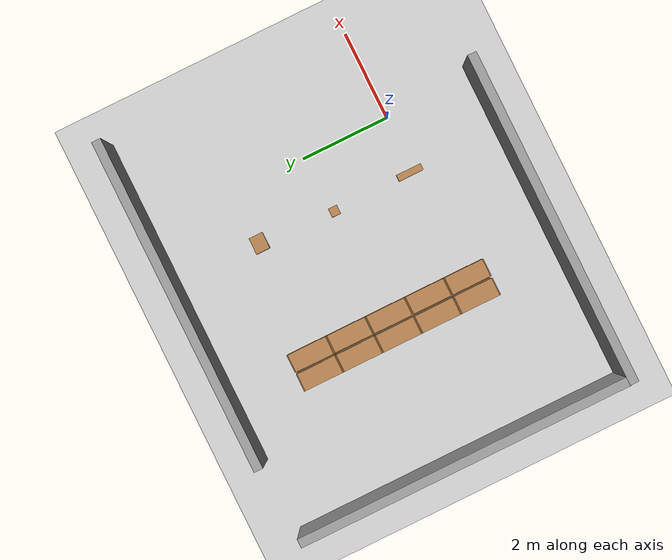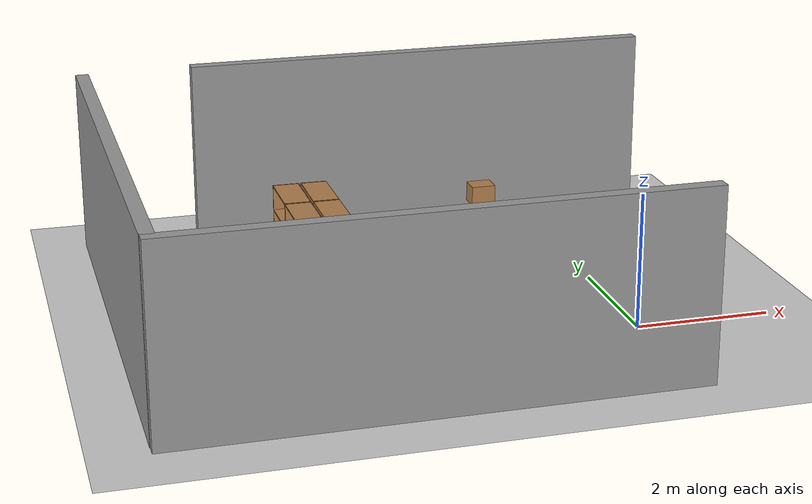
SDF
<sdf version="1.4">
 <world name="default">
  <model name="ground_plane">
   <static>1</static>
   <link name="link">
    <collision name="collision">
     <geometry><plane><normal>0 0 1</normal><size>100 100</size></plane></geometry>
     <surface><friction><ode><mu>100</mu><mu2>50</mu2></ode></friction></surface>
    </collision>
    <visual name="visual">
     <cast_shadows>0</cast_shadows>
     <geometry><plane><normal>0 0 1</normal><size>100 100</size></plane></geometry>
     <material>
      <script><uri>file://media/materials/scripts/gazebo.material</uri><name>Gazebo/Grey</name></script>
     </material>
    </visual>
    <velocity_decay><linear>0</linear><angular>0</angular></velocity_decay>
   </link>
  </model>
  <model name="bookshelf_2">
   <static>1</static>
   <link name="link">
    <inertial><mass>1</mass></inertial>
    <collision name="back">
     <pose>0 0.005 0.6 0 -0 0</pose>
     <geometry><box><size>0.9 0.01 1.2</size></box></geometry>
    </collision>
    <visual name="visual1">
     <pose>0 0.005 0.6 0 -0 0</pose>
     <geometry><box><size>0.9 0.01 1.2</size></box></geometry>
     <material>
      <script><uri>file://media/materials/scripts/gazebo.material</uri><name>Gazebo/Wood</name></script>
     </material>
    </visual>
    <collision name="left_side">
     <pose>0.45 -0.195 0.6 0 -0 0</pose>
     <geometry><box><size>0.02 0.4 1.2</size></box></geometry>
    </collision>
    <visual name="visual2">
     <pose>0.45 -0.195 0.6 0 -0 0</pose>
     <geometry><box><size>0.02 0.4 1.2</size></box></geometry>
     <material>
      <script><uri>file://media/materials/scripts/gazebo.material</uri><name>Gazebo/Wood</name></script>
     </material>
    </visual>
    <collision name="right_side">
     <pose>-0.45 -0.195 0.6 0 -0 0</pose>
     <geometry><box><size>0.02 0.4 1.2</size></box></geometry>
    </collision>
    <visual name="visual3">
     <pose>-0.45 -0.195 0.6 0 -0 0</pose>
     <geometry><box><size>0.02 0.4 1.2</size></box></geometry>
     <material>
      <script><uri>file://media/materials/scripts/gazebo.material</uri><name>Gazebo/Wood</name></script>
     </material>
    </visual>
    <collision name="bottom">
     <pose>0 -0.195 0.03 0 -0 0</pose>
     <geometry><box><size>0.88 0.4 0.06</size></box></geometry>
    </collision>
    <visual name="visual4">
     <pose>0 -0.195 0.03 0 -0 0</pose>
     <geometry><box><size>0.88 0.4 0.06</size></box></geometry>
     <material>
      <script><uri>file://media/materials/scripts/gazebo.material</uri><name>Gazebo/Wood</name></script>
     </material>
    </visual>
    <collision name="top">
     <pose>0 -0.195 1.19 0 -0 0</pose>
     <geometry><box><size>0.88 0.4 0.02</size></box></geometry>
    </collision>
    <visual name="visual5">
     <pose>0 -0.195 1.19 0 -0 0</pose>
     <geometry><box><size>0.88 0.4 0.02</size></box></geometry>
     <material>
      <script><uri>file://media/materials/scripts/gazebo.material</uri><name>Gazebo/Wood</name></script>
     </material>
    </visual>
    <collision name="low_shelf">
     <pose>0 -0.195 0.43 0 -0 0</pose>
     <geometry><box><size>0.88 0.4 0.02</size></box></geometry>
    </collision>
    <visual name="visual6">
     <pose>0 -0.195 0.43 0 -0 0</pose>
     <geometry><box><size>0.88 0.4 0.02</size></box></geometry>
     <material>
      <script><uri>file://media/materials/scripts/gazebo.material</uri><name>Gazebo/Wood</name></script>
     </material>
    </visual>
    <collision name="high_shelf">
     <pose>0 -0.195 0.8 0 -0 0</pose>
     <geometry><box><size>0.88 0.4 0.02</size></box></geometry>
    </collision>
    <visual name="visual7">
     <pose>0 -0.195 0.8 0 -0 0</pose>
     <geometry><box><size>0.88 0.4 0.02</size></box></geometry>
     <material>
      <script><uri>file://media/materials/scripts/gazebo.material</uri><name>Gazebo/Wood</name></script>
     </material>
    </visual>
    <velocity_decay><linear>0</linear><angular>0</angular></velocity_decay>
   </link>
   <pose>-4 1.8376 0 0 -0 1.5708</pose>
  </model>
  <model name="bookshelf_3">
   <static>1</static>
   <link name="link">
    <inertial><mass>1</mass></inertial>
    <collision name="back">
     <pose>0 0.005 0.6 0 -0 0</pose>
     <geometry><box><size>0.9 0.01 1.2</size></box></geometry>
    </collision>
    <visual name="visual1">
     <pose>0 0.005 0.6 0 -0 0</pose>
     <geometry><box><size>0.9 0.01 1.2</size></box></geometry>
     <material>
      <script><uri>file://media/materials/scripts/gazebo.material</uri><name>Gazebo/Wood</name></script>
     </material>
    </visual>
    <collision name="left_side">
     <pose>0.45 -0.195 0.6 0 -0 0</pose>
     <geometry><box><size>0.02 0.4 1.2</size></box></geometry>
    </collision>
    <visual name="visual2">
     <pose>0.45 -0.195 0.6 0 -0 0</pose>
     <geometry><box><size>0.02 0.4 1.2</size></box></geometry>
     <material>
      <script><uri>file://media/materials/scripts/gazebo.material</uri><name>Gazebo/Wood</name></script>
     </material>
    </visual>
    <collision name="right_side">
     <pose>-0.45 -0.195 0.6 0 -0 0</pose>
     <geometry><box><size>0.02 0.4 1.2</size></box></geometry>
    </collision>
    <visual name="visual3">
     <pose>-0.45 -0.195 0.6 0 -0 0</pose>
     <geometry><box><size>0.02 0.4 1.2</size></box></geometry>
     <material>
      <script><uri>file://media/materials/scripts/gazebo.material</uri><name>Gazebo/Wood</name></script>
     </material>
    </visual>
    <collision name="bottom">
     <pose>0 -0.195 0.03 0 -0 0</pose>
     <geometry><box><size>0.88 0.4 0.06</size></box></geometry>
    </collision>
    <visual name="visual4">
     <pose>0 -0.195 0.03 0 -0 0</pose>
     <geometry><box><size>0.88 0.4 0.06</size></box></geometry>
     <material>
      <script><uri>file://media/materials/scripts/gazebo.material</uri><name>Gazebo/Wood</name></script>
     </material>
    </visual>
    <collision name="top">
     <pose>0 -0.195 1.19 0 -0 0</pose>
     <geometry><box><size>0.88 0.4 0.02</size></box></geometry>
    </collision>
    <visual name="visual5">
     <pose>0 -0.195 1.19 0 -0 0</pose>
     <geometry><box><size>0.88 0.4 0.02</size></box></geometry>
     <material>
      <script><uri>file://media/materials/scripts/gazebo.material</uri><name>Gazebo/Wood</name></script>
     </material>
    </visual>
    <collision name="low_shelf">
     <pose>0 -0.195 0.43 0 -0 0</pose>
     <geometry><box><size>0.88 0.4 0.02</size></box></geometry>
    </collision>
    <visual name="visual6">
     <pose>0 -0.195 0.43 0 -0 0</pose>
     <geometry><box><size>0.88 0.4 0.02</size></box></geometry>
     <material>
      <script><uri>file://media/materials/scripts/gazebo.material</uri><name>Gazebo/Wood</name></script>
     </material>
    </visual>
    <collision name="high_shelf">
     <pose>0 -0.195 0.8 0 -0 0</pose>
     <geometry><box><size>0.88 0.4 0.02</size></box></geometry>
    </collision>
    <visual name="visual7">
     <pose>0 -0.195 0.8 0 -0 0</pose>
     <geometry><box><size>0.88 0.4 0.02</size></box></geometry>
     <material>
      <script><uri>file://media/materials/scripts/gazebo.material</uri><name>Gazebo/Wood</name></script>
     </material>
    </visual>
    <velocity_decay><linear>0</linear><angular>0</angular></velocity_decay>
   </link>
   <pose>-4 2.7564 0 0 -0 1.5708</pose>
  </model>
  <model name="bookshelf_4">
   <static>1</static>
   <link name="link">
    <inertial><mass>1</mass></inertial>
    <collision name="back">
     <pose>0 0.005 0.6 0 -0 0</pose>
     <geometry><box><size>0.9 0.01 1.2</size></box></geometry>
    </collision>
    <visual name="visual1">
     <pose>0 0.005 0.6 0 -0 0</pose>
     <geometry><box><size>0.9 0.01 1.2</size></box></geometry>
     <material>
      <script><uri>file://media/materials/scripts/gazebo.material</uri><name>Gazebo/Wood</name></script>
     </material>
    </visual>
    <collision name="left_side">
     <pose>0.45 -0.195 0.6 0 -0 0</pose>
     <geometry><box><size>0.02 0.4 1.2</size></box></geometry>
    </collision>
    <visual name="visual2">
     <pose>0.45 -0.195 0.6 0 -0 0</pose>
     <geometry><box><size>0.02 0.4 1.2</size></box></geometry>
     <material>
      <script><uri>file://media/materials/scripts/gazebo.material</uri><name>Gazebo/Wood</name></script>
     </material>
    </visual>
    <collision name="right_side">
     <pose>-0.45 -0.195 0.6 0 -0 0</pose>
     <geometry><box><size>0.02 0.4 1.2</size></box></geometry>
    </collision>
    <visual name="visual3">
     <pose>-0.45 -0.195 0.6 0 -0 0</pose>
     <geometry><box><size>0.02 0.4 1.2</size></box></geometry>
     <material>
      <script><uri>file://media/materials/scripts/gazebo.material</uri><name>Gazebo/Wood</name></script>
     </material>
    </visual>
    <collision name="bottom">
     <pose>0 -0.195 0.03 0 -0 0</pose>
     <geometry><box><size>0.88 0.4 0.06</size></box></geometry>
    </collision>
    <visual name="visual4">
     <pose>0 -0.195 0.03 0 -0 0</pose>
     <geometry><box><size>0.88 0.4 0.06</size></box></geometry>
     <material>
      <script><uri>file://media/materials/scripts/gazebo.material</uri><name>Gazebo/Wood</name></script>
     </material>
    </visual>
    <collision name="top">
     <pose>0 -0.195 1.19 0 -0 0</pose>
     <geometry><box><size>0.88 0.4 0.02</size></box></geometry>
    </collision>
    <visual name="visual5">
     <pose>0 -0.195 1.19 0 -0 0</pose>
     <geometry><box><size>0.88 0.4 0.02</size></box></geometry>
     <material>
      <script><uri>file://media/materials/scripts/gazebo.material</uri><name>Gazebo/Wood</name></script>
     </material>
    </visual>
    <collision name="low_shelf">
     <pose>0 -0.195 0.43 0 -0 0</pose>
     <geometry><box><size>0.88 0.4 0.02</size></box></geometry>
    </collision>
    <visual name="visual6">
     <pose>0 -0.195 0.43 0 -0 0</pose>
     <geometry><box><size>0.88 0.4 0.02</size></box></geometry>
     <material>
      <script><uri>file://media/materials/scripts/gazebo.material</uri><name>Gazebo/Wood</name></script>
     </material>
    </visual>
    <collision name="high_shelf">
     <pose>0 -0.195 0.8 0 -0 0</pose>
     <geometry><box><size>0.88 0.4 0.02</size></box></geometry>
    </collision>
    <visual name="visual7">
     <pose>0 -0.195 0.8 0 -0 0</pose>
     <geometry><box><size>0.88 0.4 0.02</size></box></geometry>
     <material>
      <script><uri>file://media/materials/scripts/gazebo.material</uri><name>Gazebo/Wood</name></script>
     </material>
    </visual>
    <velocity_decay><linear>0</linear><angular>0</angular></velocity_decay>
   </link>
   <pose>-4 3.6752 0 0 -0 1.5708</pose>
  </model>
  <model name="bookshelf_5">
   <static>1</static>
   <link name="link">
    <inertial><mass>1</mass></inertial>
    <collision name="back">
     <pose>0 0.005 0.6 0 -0 0</pose>
     <geometry><box><size>0.9 0.01 1.2</size></box></geometry>
    </collision>
    <visual name="visual1">
     <pose>0 0.005 0.6 0 -0 0</pose>
     <geometry><box><size>0.9 0.01 1.2</size></box></geometry>
     <material>
      <script><uri>file://media/materials/scripts/gazebo.material</uri><name>Gazebo/Wood</name></script>
     </material>
    </visual>
    <collision name="left_side">
     <pose>0.45 -0.195 0.6 0 -0 0</pose>
     <geometry><box><size>0.02 0.4 1.2</size></box></geometry>
    </collision>
    <visual name="visual2">
     <pose>0.45 -0.195 0.6 0 -0 0</pose>
     <geometry><box><size>0.02 0.4 1.2</size></box></geometry>
     <material>
      <script><uri>file://media/materials/scripts/gazebo.material</uri><name>Gazebo/Wood</name></script>
     </material>
    </visual>
    <collision name="right_side">
     <pose>-0.45 -0.195 0.6 0 -0 0</pose>
     <geometry><box><size>0.02 0.4 1.2</size></box></geometry>
    </collision>
    <visual name="visual3">
     <pose>-0.45 -0.195 0.6 0 -0 0</pose>
     <geometry><box><size>0.02 0.4 1.2</size></box></geometry>
     <material>
      <script><uri>file://media/materials/scripts/gazebo.material</uri><name>Gazebo/Wood</name></script>
     </material>
    </visual>
    <collision name="bottom">
     <pose>0 -0.195 0.03 0 -0 0</pose>
     <geometry><box><size>0.88 0.4 0.06</size></box></geometry>
    </collision>
    <visual name="visual4">
     <pose>0 -0.195 0.03 0 -0 0</pose>
     <geometry><box><size>0.88 0.4 0.06</size></box></geometry>
     <material>
      <script><uri>file://media/materials/scripts/gazebo.material</uri><name>Gazebo/Wood</name></script>
     </material>
    </visual>
    <collision name="top">
     <pose>0 -0.195 1.19 0 -0 0</pose>
     <geometry><box><size>0.88 0.4 0.02</size></box></geometry>
    </collision>
    <visual name="visual5">
     <pose>0 -0.195 1.19 0 -0 0</pose>
     <geometry><box><size>0.88 0.4 0.02</size></box></geometry>
     <material>
      <script><uri>file://media/materials/scripts/gazebo.material</uri><name>Gazebo/Wood</name></script>
     </material>
    </visual>
    <collision name="low_shelf">
     <pose>0 -0.195 0.43 0 -0 0</pose>
     <geometry><box><size>0.88 0.4 0.02</size></box></geometry>
    </collision>
    <visual name="visual6">
     <pose>0 -0.195 0.43 0 -0 0</pose>
     <geometry><box><size>0.88 0.4 0.02</size></box></geometry>
     <material>
      <script><uri>file://media/materials/scripts/gazebo.material</uri><name>Gazebo/Wood</name></script>
     </material>
    </visual>
    <collision name="high_shelf">
     <pose>0 -0.195 0.8 0 -0 0</pose>
     <geometry><box><size>0.88 0.4 0.02</size></box></geometry>
    </collision>
    <visual name="visual7">
     <pose>0 -0.195 0.8 0 -0 0</pose>
     <geometry><box><size>0.88 0.4 0.02</size></box></geometry>
     <material>
      <script><uri>file://media/materials/scripts/gazebo.material</uri><name>Gazebo/Wood</name></script>
     </material>
    </visual>
    <velocity_decay><linear>0</linear><angular>0</angular></velocity_decay>
   </link>
   <pose>-4.05 0 0 0 0 -1.5708</pose>
  </model>
  <model name="bookshelf_6">
   <static>1</static>
   <link name="link">
    <inertial><mass>1</mass></inertial>
    <collision name="back">
     <pose>0 0.005 0.6 0 -0 0</pose>
     <geometry><box><size>0.9 0.01 1.2</size></box></geometry>
    </collision>
    <visual name="visual1">
     <pose>0 0.005 0.6 0 -0 0</pose>
     <geometry><box><size>0.9 0.01 1.2</size></box></geometry>
     <material>
      <script><uri>file://media/materials/scripts/gazebo.material</uri><name>Gazebo/Wood</name></script>
     </material>
    </visual>
    <collision name="left_side">
     <pose>0.45 -0.195 0.6 0 -0 0</pose>
     <geometry><box><size>0.02 0.4 1.2</size></box></geometry>
    </collision>
    <visual name="visual2">
     <pose>0.45 -0.195 0.6 0 -0 0</pose>
     <geometry><box><size>0.02 0.4 1.2</size></box></geometry>
     <material>
      <script><uri>file://media/materials/scripts/gazebo.material</uri><name>Gazebo/Wood</name></script>
     </material>
    </visual>
    <collision name="right_side">
     <pose>-0.45 -0.195 0.6 0 -0 0</pose>
     <geometry><box><size>0.02 0.4 1.2</size></box></geometry>
    </collision>
    <visual name="visual3">
     <pose>-0.45 -0.195 0.6 0 -0 0</pose>
     <geometry><box><size>0.02 0.4 1.2</size></box></geometry>
     <material>
      <script><uri>file://media/materials/scripts/gazebo.material</uri><name>Gazebo/Wood</name></script>
     </material>
    </visual>
    <collision name="bottom">
     <pose>0 -0.195 0.03 0 -0 0</pose>
     <geometry><box><size>0.88 0.4 0.06</size></box></geometry>
    </collision>
    <visual name="visual4">
     <pose>0 -0.195 0.03 0 -0 0</pose>
     <geometry><box><size>0.88 0.4 0.06</size></box></geometry>
     <material>
      <script><uri>file://media/materials/scripts/gazebo.material</uri><name>Gazebo/Grey</name></script>
     </material>
    </visual>
    <collision name="top">
     <pose>0 -0.195 1.19 0 -0 0</pose>
     <geometry><box><size>0.88 0.4 0.02</size></box></geometry>
    </collision>
    <visual name="visual5">
     <pose>0 -0.195 1.19 0 -0 0</pose>
     <geometry><box><size>0.88 0.4 0.02</size></box></geometry>
     <material>
      <script><uri>file://media/materials/scripts/gazebo.material</uri><name>Gazebo/Wood</name></script>
     </material>
    </visual>
    <collision name="low_shelf">
     <pose>0 -0.195 0.43 0 -0 0</pose>
     <geometry><box><size>0.88 0.4 0.02</size></box></geometry>
    </collision>
    <visual name="visual6">
     <pose>0 -0.195 0.43 0 -0 0</pose>
     <geometry><box><size>0.88 0.4 0.02</size></box></geometry>
     <material>
      <script><uri>file://media/materials/scripts/gazebo.material</uri><name>Gazebo/Wood</name></script>
     </material>
    </visual>
    <collision name="high_shelf">
     <pose>0 -0.195 0.8 0 -0 0</pose>
     <geometry><box><size>0.88 0.4 0.02</size></box></geometry>
    </collision>
    <visual name="visual7">
     <pose>0 -0.195 0.8 0 -0 0</pose>
     <geometry><box><size>0.88 0.4 0.02</size></box></geometry>
     <material>
      <script><uri>file://media/materials/scripts/gazebo.material</uri><name>Gazebo/Wood</name></script>
     </material>
    </visual>
    <velocity_decay><linear>0</linear><angular>0</angular></velocity_decay>
   </link>
   <pose>-4.05 0.9188 0 0 0 -1.5708</pose>
  </model>
  <model name="bookshelf_7">
   <static>1</static>
   <link name="link">
    <inertial><mass>1</mass></inertial>
    <collision name="back">
     <pose>0 0.005 0.6 0 -0 0</pose>
     <geometry><box><size>0.9 0.01 1.2</size></box></geometry>
    </collision>
    <visual name="visual1">
     <pose>0 0.005 0.6 0 -0 0</pose>
     <geometry><box><size>0.9 0.01 1.2</size></box></geometry>
     <material>
      <script><uri>file://media/materials/scripts/gazebo.material</uri><name>Gazebo/Wood</name></script>
     </material>
    </visual>
    <collision name="left_side">
     <pose>0.45 -0.195 0.6 0 -0 0</pose>
     <geometry><box><size>0.02 0.4 1.2</size></box></geometry>
    </collision>
    <visual name="visual2">
     <pose>0.45 -0.195 0.6 0 -0 0</pose>
     <geometry><box><size>0.02 0.4 1.2</size></box></geometry>
     <material>
      <script><uri>file://media/materials/scripts/gazebo.material</uri><name>Gazebo/Wood</name></script>
     </material>
    </visual>
    <collision name="right_side">
     <pose>-0.45 -0.195 0.6 0 -0 0</pose>
     <geometry><box><size>0.02 0.4 1.2</size></box></geometry>
    </collision>
    <visual name="visual3">
     <pose>-0.45 -0.195 0.6 0 -0 0</pose>
     <geometry><box><size>0.02 0.4 1.2</size></box></geometry>
     <material>
      <script><uri>file://media/materials/scripts/gazebo.material</uri><name>Gazebo/Wood</name></script>
     </material>
    </visual>
    <collision name="bottom">
     <pose>0 -0.195 0.03 0 -0 0</pose>
     <geometry><box><size>0.88 0.4 0.06</size></box></geometry>
    </collision>
    <visual name="visual4">
     <pose>0 -0.195 0.03 0 -0 0</pose>
     <geometry><box><size>0.88 0.4 0.06</size></box></geometry>
     <material>
      <script><uri>file://media/materials/scripts/gazebo.material</uri><name>Gazebo/Wood</name></script>
     </material>
    </visual>
    <collision name="top">
     <pose>0 -0.195 1.19 0 -0 0</pose>
     <geometry><box><size>0.88 0.4 0.02</size></box></geometry>
    </collision>
    <visual name="visual5">
     <pose>0 -0.195 1.19 0 -0 0</pose>
     <geometry><box><size>0.88 0.4 0.02</size></box></geometry>
     <material>
      <script><uri>file://media/materials/scripts/gazebo.material</uri><name>Gazebo/Wood</name></script>
     </material>
    </visual>
    <collision name="low_shelf">
     <pose>0 -0.195 0.43 0 -0 0</pose>
     <geometry><box><size>0.88 0.4 0.02</size></box></geometry>
    </collision>
    <visual name="visual6">
     <pose>0 -0.195 0.43 0 -0 0</pose>
     <geometry><box><size>0.88 0.4 0.02</size></box></geometry>
     <material>
      <script><uri>file://media/materials/scripts/gazebo.material</uri><name>Gazebo/Wood</name></script>
     </material>
    </visual>
    <collision name="high_shelf">
     <pose>0 -0.195 0.8 0 -0 0</pose>
     <geometry><box><size>0.88 0.4 0.02</size></box></geometry>
    </collision>
    <visual name="visual7">
     <pose>0 -0.195 0.8 0 -0 0</pose>
     <geometry><box><size>0.88 0.4 0.02</size></box></geometry>
     <material>
      <script><uri>file://media/materials/scripts/gazebo.material</uri><name>Gazebo/Wood</name></script>
     </material>
    </visual>
    <velocity_decay><linear>0</linear><angular>0</angular></velocity_decay>
   </link>
   <pose>-4.05 1.8376 0 0 0 -1.5708</pose>
  </model>
  <model name="bookshelf_8">
   <static>1</static>
   <link name="link">
    <inertial><mass>1</mass></inertial>
    <collision name="back">
     <pose>0 0.005 0.6 0 -0 0</pose>
     <geometry><box><size>0.9 0.01 1.2</size></box></geometry>
    </collision>
    <visual name="visual1">
     <pose>0 0.005 0.6 0 -0 0</pose>
     <geometry><box><size>0.9 0.01 1.2</size></box></geometry>
     <material>
      <script><uri>file://media/materials/scripts/gazebo.material</uri><name>Gazebo/Wood</name></script>
     </material>
    </visual>
    <collision name="left_side">
     <pose>0.45 -0.195 0.6 0 -0 0</pose>
     <geometry><box><size>0.02 0.4 1.2</size></box></geometry>
    </collision>
    <visual name="visual2">
     <pose>0.45 -0.195 0.6 0 -0 0</pose>
     <geometry><box><size>0.02 0.4 1.2</size></box></geometry>
     <material>
      <script><uri>file://media/materials/scripts/gazebo.material</uri><name>Gazebo/Wood</name></script>
     </material>
    </visual>
    <collision name="right_side">
     <pose>-0.45 -0.195 0.6 0 -0 0</pose>
     <geometry><box><size>0.02 0.4 1.2</size></box></geometry>
    </collision>
    <visual name="visual3">
     <pose>-0.45 -0.195 0.6 0 -0 0</pose>
     <geometry><box><size>0.02 0.4 1.2</size></box></geometry>
     <material>
      <script><uri>file://media/materials/scripts/gazebo.material</uri><name>Gazebo/Wood</name></script>
     </material>
    </visual>
    <collision name="bottom">
     <pose>0 -0.195 0.03 0 -0 0</pose>
     <geometry><box><size>0.88 0.4 0.06</size></box></geometry>
    </collision>
    <visual name="visual4">
     <pose>0 -0.195 0.03 0 -0 0</pose>
     <geometry><box><size>0.88 0.4 0.06</size></box></geometry>
     <material>
      <script><uri>file://media/materials/scripts/gazebo.material</uri><name>Gazebo/Wood</name></script>
     </material>
    </visual>
    <collision name="top">
     <pose>0 -0.195 1.19 0 -0 0</pose>
     <geometry><box><size>0.88 0.4 0.02</size></box></geometry>
    </collision>
    <visual name="visual5">
     <pose>0 -0.195 1.19 0 -0 0</pose>
     <geometry><box><size>0.88 0.4 0.02</size></box></geometry>
     <material>
      <script><uri>file://media/materials/scripts/gazebo.material</uri><name>Gazebo/Wood</name></script>
     </material>
    </visual>
    <collision name="low_shelf">
     <pose>0 -0.195 0.43 0 -0 0</pose>
     <geometry><box><size>0.88 0.4 0.02</size></box></geometry>
    </collision>
    <visual name="visual6">
     <pose>0 -0.195 0.43 0 -0 0</pose>
     <geometry><box><size>0.88 0.4 0.02</size></box></geometry>
     <material>
      <script><uri>file://media/materials/scripts/gazebo.material</uri><name>Gazebo/Wood</name></script>
     </material>
    </visual>
    <collision name="high_shelf">
     <pose>0 -0.195 0.8 0 -0 0</pose>
     <geometry><box><size>0.88 0.4 0.02</size></box></geometry>
    </collision>
    <visual name="visual7">
     <pose>0 -0.195 0.8 0 -0 0</pose>
     <geometry><box><size>0.88 0.4 0.02</size></box></geometry>
     <material>
      <script><uri>file://media/materials/scripts/gazebo.material</uri><name>Gazebo/Wood</name></script>
     </material>
    </visual>
    <velocity_decay><linear>0</linear><angular>0</angular></velocity_decay>
   </link>
   <pose>-4.05 2.7564 0 0 0 -1.5708</pose>
  </model>
  <model name="bookshelf_9">
   <static>1</static>
   <link name="link">
    <inertial><mass>1</mass></inertial>
    <collision name="back">
     <pose>0 0.005 0.6 0 -0 0</pose>
     <geometry><box><size>0.9 0.01 1.2</size></box></geometry>
    </collision>
    <visual name="visual1">
     <pose>0 0.005 0.6 0 -0 0</pose>
     <geometry><box><size>0.9 0.01 1.2</size></box></geometry>
     <material>
      <script><uri>file://media/materials/scripts/gazebo.material</uri><name>Gazebo/Wood</name></script>
     </material>
    </visual>
    <collision name="left_side">
     <pose>0.45 -0.195 0.6 0 -0 0</pose>
     <geometry><box><size>0.02 0.4 1.2</size></box></geometry>
    </collision>
    <visual name="visual2">
     <pose>0.45 -0.195 0.6 0 -0 0</pose>
     <geometry><box><size>0.02 0.4 1.2</size></box></geometry>
     <material>
      <script><uri>file://media/materials/scripts/gazebo.material</uri><name>Gazebo/Wood</name></script>
     </material>
    </visual>
    <collision name="right_side">
     <pose>-0.45 -0.195 0.6 0 -0 0</pose>
     <geometry><box><size>0.02 0.4 1.2</size></box></geometry>
    </collision>
    <visual name="visual3">
     <pose>-0.45 -0.195 0.6 0 -0 0</pose>
     <geometry><box><size>0.02 0.4 1.2</size></box></geometry>
     <material>
      <script><uri>file://media/materials/scripts/gazebo.material</uri><name>Gazebo/Wood</name></script>
     </material>
    </visual>
    <collision name="bottom">
     <pose>0 -0.195 0.03 0 -0 0</pose>
     <geometry><box><size>0.88 0.4 0.06</size></box></geometry>
    </collision>
    <visual name="visual4">
     <pose>0 -0.195 0.03 0 -0 0</pose>
     <geometry><box><size>0.88 0.4 0.06</size></box></geometry>
     <material>
      <script><uri>file://media/materials/scripts/gazebo.material</uri><name>Gazebo/Wood</name></script>
     </material>
    </visual>
    <collision name="top">
     <pose>0 -0.195 1.19 0 -0 0</pose>
     <geometry><box><size>0.88 0.4 0.02</size></box></geometry>
    </collision>
    <visual name="visual5">
     <pose>0 -0.195 1.19 0 -0 0</pose>
     <geometry><box><size>0.88 0.4 0.02</size></box></geometry>
     <material>
      <script><uri>file://media/materials/scripts/gazebo.material</uri><name>Gazebo/Wood</name></script>
     </material>
    </visual>
    <collision name="low_shelf">
     <pose>0 -0.195 0.43 0 -0 0</pose>
     <geometry><box><size>0.88 0.4 0.02</size></box></geometry>
    </collision>
    <visual name="visual6">
     <pose>0 -0.195 0.43 0 -0 0</pose>
     <geometry><box><size>0.88 0.4 0.02</size></box></geometry>
     <material>
      <script><uri>file://media/materials/scripts/gazebo.material</uri><name>Gazebo/Wood</name></script>
     </material>
    </visual>
    <collision name="high_shelf">
     <pose>0 -0.195 0.8 0 -0 0</pose>
     <geometry><box><size>0.88 0.4 0.02</size></box></geometry>
    </collision>
    <visual name="visual7">
     <pose>0 -0.195 0.8 0 -0 0</pose>
     <geometry><box><size>0.88 0.4 0.02</size></box></geometry>
     <material>
      <script><uri>file://media/materials/scripts/gazebo.material</uri><name>Gazebo/Wood</name></script>
     </material>
    </visual>
    <velocity_decay><linear>0</linear><angular>0</angular></velocity_decay>
   </link>
   <pose>-4.05 3.6752 0 0 0 -1.5708</pose>
  </model>
  <model name="bookshelf_17">
   <static>1</static>
   <link name="link">
    <inertial><mass>1</mass></inertial>
    <collision name="back">
     <pose>0 0.005 0.6 0 -0 0</pose>
     <geometry><box><size>0.9 0.01 1.2</size></box></geometry>
    </collision>
    <visual name="visual1">
     <pose>0 0.005 0.6 0 -0 0</pose>
     <geometry><box><size>0.9 0.01 1.2</size></box></geometry>
     <material>
      <script><uri>file://media/materials/scripts/gazebo.material</uri><name>Gazebo/Wood</name></script>
     </material>
    </visual>
    <collision name="left_side">
     <pose>0.45 -0.195 0.6 0 -0 0</pose>
     <geometry><box><size>0.02 0.4 1.2</size></box></geometry>
    </collision>
    <visual name="visual2">
     <pose>0.45 -0.195 0.6 0 -0 0</pose>
     <geometry><box><size>0.02 0.4 1.2</size></box></geometry>
     <material>
      <script><uri>file://media/materials/scripts/gazebo.material</uri><name>Gazebo/Wood</name></script>
     </material>
    </visual>
    <collision name="right_side">
     <pose>-0.45 -0.195 0.6 0 -0 0</pose>
     <geometry><box><size>0.02 0.4 1.2</size></box></geometry>
    </collision>
    <visual name="visual3">
     <pose>-0.45 -0.195 0.6 0 -0 0</pose>
     <geometry><box><size>0.02 0.4 1.2</size></box></geometry>
     <material>
      <script><uri>file://media/materials/scripts/gazebo.material</uri><name>Gazebo/Wood</name></script>
     </material>
    </visual>
    <collision name="bottom">
     <pose>0 -0.195 0.03 0 -0 0</pose>
     <geometry><box><size>0.88 0.4 0.06</size></box></geometry>
    </collision>
    <visual name="visual4">
     <pose>0 -0.195 0.03 0 -0 0</pose>
     <geometry><box><size>0.88 0.4 0.06</size></box></geometry>
     <material>
      <script><uri>file://media/materials/scripts/gazebo.material</uri><name>Gazebo/Wood</name></script>
     </material>
    </visual>
    <collision name="top">
     <pose>0 -0.195 1.19 0 -0 0</pose>
     <geometry><box><size>0.88 0.4 0.02</size></box></geometry>
    </collision>
    <visual name="visual5">
     <pose>0 -0.195 1.19 0 -0 0</pose>
     <geometry><box><size>0.88 0.4 0.02</size></box></geometry>
     <material>
      <script><uri>file://media/materials/scripts/gazebo.material</uri><name>Gazebo/Wood</name></script>
     </material>
    </visual>
    <collision name="low_shelf">
     <pose>0 -0.195 0.43 0 -0 0</pose>
     <geometry><box><size>0.88 0.4 0.02</size></box></geometry>
    </collision>
    <visual name="visual6">
     <pose>0 -0.195 0.43 0 -0 0</pose>
     <geometry><box><size>0.88 0.4 0.02</size></box></geometry>
     <material>
      <script><uri>file://media/materials/scripts/gazebo.material</uri><name>Gazebo/Wood</name></script>
     </material>
    </visual>
    <collision name="high_shelf">
     <pose>0 -0.195 0.8 0 -0 0</pose>
     <geometry><box><size>0.88 0.4 0.02</size></box></geometry>
    </collision>
    <visual name="visual7">
     <pose>0 -0.195 0.8 0 -0 0</pose>
     <geometry><box><size>0.88 0.4 0.02</size></box></geometry>
     <material>
      <script><uri>file://media/materials/scripts/gazebo.material</uri><name>Gazebo/Wood</name></script>
     </material>
    </visual>
    <velocity_decay><linear>0</linear><angular>0</angular></velocity_decay>
   </link>
   <pose>-4 0 0 0 -0 1.5708</pose>
  </model>
  <model name="bookshelf_18">
   <static>1</static>
   <link name="link">
    <inertial><mass>1</mass></inertial>
    <collision name="back">
     <pose>0 0.005 0.6 0 -0 0</pose>
     <geometry><box><size>0.9 0.01 1.2</size></box></geometry>
    </collision>
    <visual name="visual1">
     <pose>0 0.005 0.6 0 -0 0</pose>
     <geometry><box><size>0.9 0.01 1.2</size></box></geometry>
     <material>
      <script><uri>file://media/materials/scripts/gazebo.material</uri><name>Gazebo/Wood</name></script>
     </material>
    </visual>
    <collision name="left_side">
     <pose>0.45 -0.195 0.6 0 -0 0</pose>
     <geometry><box><size>0.02 0.4 1.2</size></box></geometry>
    </collision>
    <visual name="visual2">
     <pose>0.45 -0.195 0.6 0 -0 0</pose>
     <geometry><box><size>0.02 0.4 1.2</size></box></geometry>
     <material>
      <script><uri>file://media/materials/scripts/gazebo.material</uri><name>Gazebo/Wood</name></script>
     </material>
    </visual>
    <collision name="right_side">
     <pose>-0.45 -0.195 0.6 0 -0 0</pose>
     <geometry><box><size>0.02 0.4 1.2</size></box></geometry>
    </collision>
    <visual name="visual3">
     <pose>-0.45 -0.195 0.6 0 -0 0</pose>
     <geometry><box><size>0.02 0.4 1.2</size></box></geometry>
     <material>
      <script><uri>file://media/materials/scripts/gazebo.material</uri><name>Gazebo/Wood</name></script>
     </material>
    </visual>
    <collision name="bottom">
     <pose>0 -0.195 0.03 0 -0 0</pose>
     <geometry><box><size>0.88 0.4 0.06</size></box></geometry>
    </collision>
    <visual name="visual4">
     <pose>0 -0.195 0.03 0 -0 0</pose>
     <geometry><box><size>0.88 0.4 0.06</size></box></geometry>
     <material>
      <script><uri>file://media/materials/scripts/gazebo.material</uri><name>Gazebo/Wood</name></script>
     </material>
    </visual>
    <collision name="top">
     <pose>0 -0.195 1.19 0 -0 0</pose>
     <geometry><box><size>0.88 0.4 0.02</size></box></geometry>
    </collision>
    <visual name="visual5">
     <pose>0 -0.195 1.19 0 -0 0</pose>
     <geometry><box><size>0.88 0.4 0.02</size></box></geometry>
     <material>
      <script><uri>file://media/materials/scripts/gazebo.material</uri><name>Gazebo/Wood</name></script>
     </material>
    </visual>
    <collision name="low_shelf">
     <pose>0 -0.195 0.43 0 -0 0</pose>
     <geometry><box><size>0.88 0.4 0.02</size></box></geometry>
    </collision>
    <visual name="visual6">
     <pose>0 -0.195 0.43 0 -0 0</pose>
     <geometry><box><size>0.88 0.4 0.02</size></box></geometry>
     <material>
      <script><uri>file://media/materials/scripts/gazebo.material</uri><name>Gazebo/Wood</name></script>
     </material>
    </visual>
    <collision name="high_shelf">
     <pose>0 -0.195 0.8 0 -0 0</pose>
     <geometry><box><size>0.88 0.4 0.02</size></box></geometry>
    </collision>
    <visual name="visual7">
     <pose>0 -0.195 0.8 0 -0 0</pose>
     <geometry><box><size>0.88 0.4 0.02</size></box></geometry>
     <material>
      <script><uri>file://media/materials/scripts/gazebo.material</uri><name>Gazebo/Wood</name></script>
     </material>
    </visual>
    <velocity_decay><linear>0</linear><angular>0</angular></velocity_decay>
   </link>
   <pose>-4 0.918842 0 0 -0 1.5708</pose>
  </model>
  <model name="grey_wall">
   <static>1</static>
   <link name="link">
    <pose>0 0 1.4 0 -0 0</pose>
    <collision name="collision"><geometry><box><size>7.5 0.2 2.8</size></box></geometry></collision>
    <visual name="visual">
     <cast_shadows>0</cast_shadows>
     <geometry><box><size>7.5 0.2 2.8</size></box></geometry>
     <material>
      <script>
       <uri>model://grey_wall/materials/scripts</uri>
       <uri>model://grey_wall/materials/textures</uri>
       <name>vrc/grey_wall</name>
      </script>
     </material>
    </visual>
    <velocity_decay><linear>0</linear><angular>0</angular></velocity_decay>
   </link>
   <pose>-3.47835 -2.03324 0 0 -0 0</pose>
  </model>
  <model name="grey_wall_0">
   <static>1</static>
   <link name="link">
    <pose>0 0 1.4 0 -0 0</pose>
    <collision name="collision"><geometry><box><size>7.5 0.2 2.8</size></box></geometry></collision>
    <visual name="visual">
     <cast_shadows>0</cast_shadows>
     <geometry><box><size>7.5 0.2 2.8</size></box></geometry>
     <material>
      <script>
       <uri>model://grey_wall/materials/scripts</uri>
       <uri>model://grey_wall/materials/textures</uri>
       <name>vrc/grey_wall</name>
      </script>
     </material>
    </visual>
    <velocity_decay><linear>0</linear><angular>0</angular></velocity_decay>
   </link>
   <pose>-7.13691 1.7899 0 0 -0 1.5708</pose>
  </model>
  <model name="grey_wall_2">
   <static>1</static>
   <link name="link">
    <pose>0 0 1.4 0 -0 0</pose>
    <collision name="collision"><geometry><box><size>7.5 0.2 2.8</size></box></geometry></collision>
    <visual name="visual">
     <cast_shadows>0</cast_shadows>
     <geometry><box><size>7.5 0.2 2.8</size></box></geometry>
     <material>
      <script>
       <uri>model://grey_wall/materials/scripts</uri>
       <uri>model://grey_wall/materials/textures</uri>
       <name>vrc/grey_wall</name>
      </script>
     </material>
    </visual>
    <velocity_decay><linear>0</linear><angular>0</angular></velocity_decay>
   </link>
   <pose>-1.6814 5.62049 0 0 -0 0</pose>
  </model>
  <model name="unit_box_2">
   <pose>-1.3138 1.8942 0.569328 0 -0 4.3e-05</pose>
   <link name="link">
    <inertial>
     <mass>1</mass>
     <inertia><ixx>1</ixx><ixy>0</ixy><ixz>0</ixz><iyy>1</iyy><iyz>0</iyz><izz>1</izz></inertia>
    </inertial>
    <collision name="collision">
     <geometry><box><size>0.258657 0.258657 0.258657</size></box></geometry>
    </collision>
    <visual name="visual">
     <geometry><box><size>0.2 0.2 0.2</size></box></geometry>
     <material>
      <script><uri>file://media/materials/scripts/gazebo.material</uri><name>Gazebo/WoodPallet</name></script>
     </material>
    </visual>
    <velocity_decay><linear>0</linear><angular>0</angular></velocity_decay>
   </link>
   <static>0</static>
  </model>
  <model name="unit_box_3">
   <pose>-3.78829 3.71589 0.91 -0 -0 -2e-06</pose>
   <link name="link">
    <inertial>
     <mass>1</mass>
     <inertia><ixx>1</ixx><ixy>0</ixy><ixz>0</ixz><iyy>1</iyy><iyz>0</iyz><izz>1</izz></inertia>
    </inertial>
    <collision name="collision"><geometry><box><size>0.2 0.2 0.2</size></box></geometry></collision>
    <visual name="visual">
     <geometry><box><size>0.2 0.2 0.2</size></box></geometry>
     <material>
      <script><uri>file://media/materials/scripts/gazebo.material</uri><name>Gazebo/WoodPallet</name></script>
     </material>
    </visual>
    <velocity_decay><linear>0</linear><angular>0</angular></velocity_decay>
   </link>
   <static>0</static>
  </model>
  <model name="unit_box_5">
   <pose>-3.80826 1.84577 0.91 -1e-06 -1e-06 -3e-06</pose>
   <link name="link">
    <inertial>
     <mass>1</mass>
     <inertia><ixx>1</ixx><ixy>0</ixy><ixz>0</ixz><iyy>1</iyy><iyz>0</iyz><izz>1</izz></inertia>
    </inertial>
    <collision name="collision"><geometry><box><size>0.2 0.2 0.2</size></box></geometry></collision>
    <visual name="visual">
     <geometry><box><size>0.2 0.2 0.2</size></box></geometry>
     <material>
      <script><uri>file://media/materials/scripts/gazebo.material</uri><name>Gazebo/WoodPallet</name></script>
     </material>
    </visual>
    <velocity_decay><linear>0</linear><angular>0</angular></velocity_decay>
   </link>
   <static>0</static>
  </model>
  <model name="unit_box_7">
   <pose>-3.84058 -0.130175 0.91 -1e-06 -1e-06 -8e-06</pose>
   <link name="link">
    <inertial>
     <mass>1</mass>
     <inertia><ixx>1</ixx><ixy>0</ixy><ixz>0</ixz><iyy>1</iyy><iyz>0</iyz><izz>1</izz></inertia>
    </inertial>
    <collision name="collision"><geometry><box><size>0.2 0.2 0.2</size></box></geometry></collision>
    <visual name="visual">
     <geometry><box><size>0.2 0.2 0.2</size></box></geometry>
     <material>
      <script><uri>file://media/materials/scripts/gazebo.material</uri><name>Gazebo/WoodPallet</name></script>
     </material>
    </visual>
    <velocity_decay><linear>0</linear><angular>0</angular></velocity_decay>
   </link>
   <static>0</static>
  </model>
  <model name="unit_box_1_1">
   <pose>-1.23442 3.60963 0.960152 6.84731e-28 1e-06 -7.6e-05</pose>
   <link name="link">
    <inertial>
     <mass>1</mass>
     <inertia><ixx>1</ixx><ixy>0</ixy><ixz>0</ixz><iyy>1</iyy><iyz>0</iyz><izz>1</izz></inertia>
    </inertial>
    <collision name="collision"><geometry><box><size>0.370481 0.31238 0.300304</size></box></geometry></collision>
    <visual name="visual">
     <geometry><box><size>0.370481 0.31238 0.300304</size></box></geometry>
     <material>
      <script><uri>file://media/materials/scripts/gazebo.material</uri><name>Gazebo/WoodPallet</name></script>
     </material>
    </visual>
    <velocity_decay><linear>0</linear><angular>0</angular></velocity_decay>
   </link>
   <static>0</static>
  </model>
  <model name="unit_box_2_0">
   <pose>-1.29351 0.11236 0.904843 1e-06 -1.13004e-28 -6e-06</pose>
   <link name="link">
    <inertial>
     <mass>1</mass>
     <inertia><ixx>1</ixx><ixy>0</ixy><ixz>0</ixz><iyy>1</iyy><iyz>0</iyz><izz>1</izz></inertia>
    </inertial>
    <collision name="collision"><geometry><box><size>0.14525 0.568323 0.189698</size></box></geometry></collision>
    <visual name="visual">
     <geometry><box><size>0.14525 0.568323 0.189698</size></box></geometry>
     <material>
      <script><uri>file://media/materials/scripts/gazebo.material</uri><name>Gazebo/WoodPallet</name></script>
     </material>
    </visual>
    <velocity_decay><linear>0</linear><angular>0</angular></velocity_decay>
   </link>
   <static>0</static>
  </model>
 </world>
</sdf>
